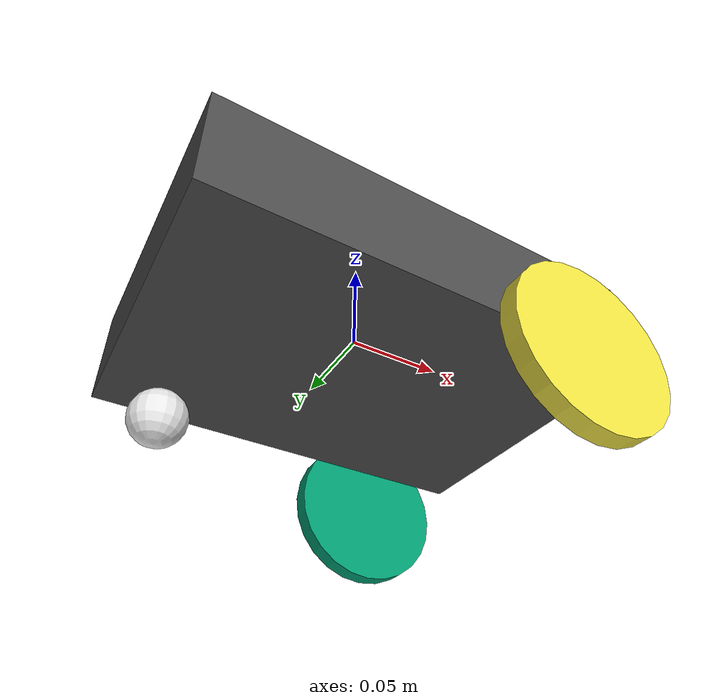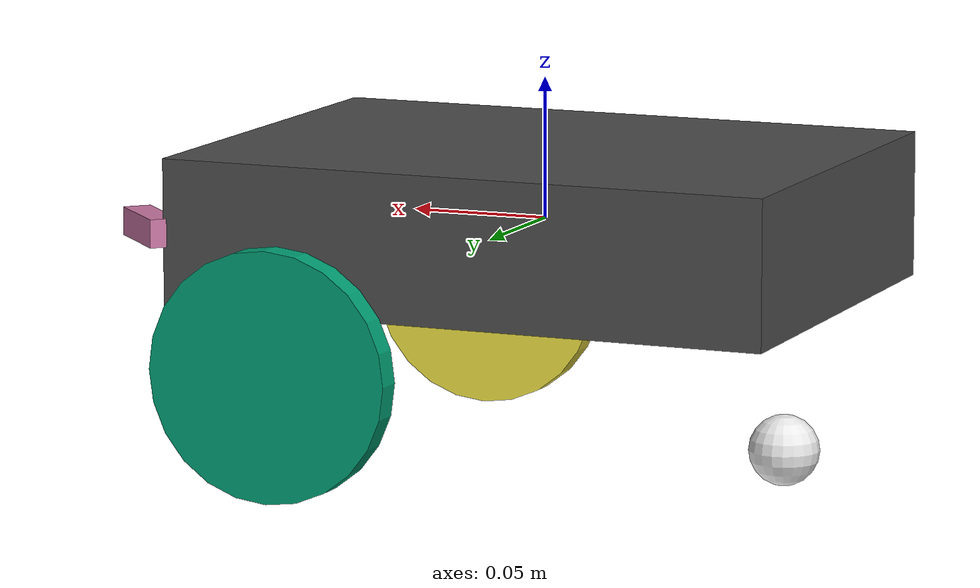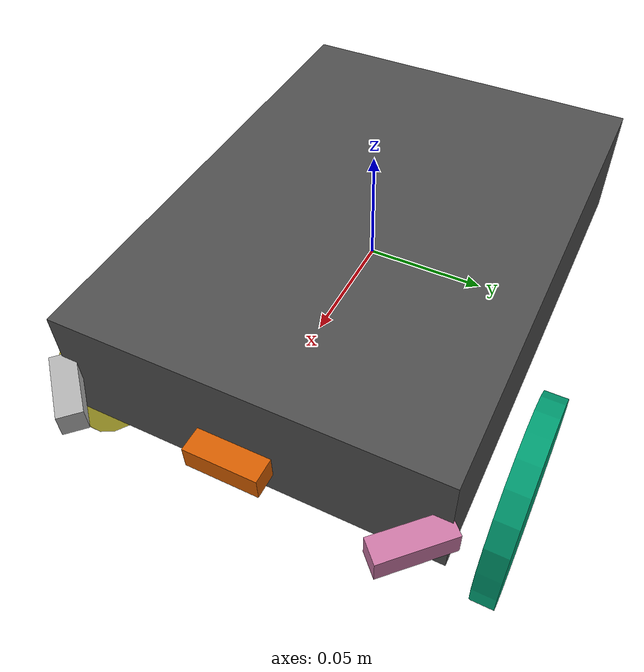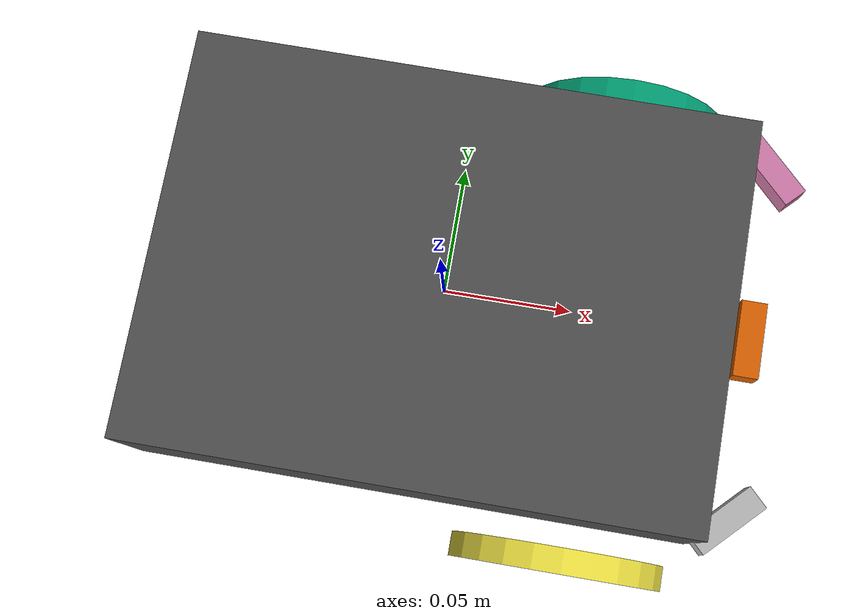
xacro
<?xml version="1.0"?>

<robot name="robot" xmlns:xacro="http://ros.org/wiki/xacro">

   <!-- Include all component files -->
   <xacro:include filename="$(find mybot_description)/urdf/materials.urdf.xacro" />
   <xacro:include filename="$(find mybot_description)/urdf/base.urdf.xacro" />
   <xacro:include filename="$(find mybot_description)/urdf/sensors.urdf.xacro" />

   <!-- Add the base and wheels -->
   <base name="base" color="DarkGrey"/>

   <!-- Add the drive wheels -->
   <xacro:wheel wheel_prefix="left" parent="base_chassis_link" rotation="${-PI/2}">
      <origin xyz="${wheel_offset_x} ${wheel_offset_y} ${wheel_offset_z}" rpy="0 0 0" />
   </xacro:wheel>

   <xacro:wheel wheel_prefix="right" parent="base_chassis_link" rotation="${PI/2}">
      <origin xyz="${wheel_offset_x} ${-wheel_offset_y} ${wheel_offset_z}" rpy="0 0 0" />
   </xacro:wheel>

   <!-- Add a rear caster -->
   <xacro:caster parent="base" prefix="center" color="White"/>

   <!-- Add the sensors -->
   <sensors/>

   <gazebo>
      <plugin name="gazebo_ros_control" filename="libgazebo_ros_control.so">
         <robotNamespace>/</robotNamespace>
       </plugin>

	  <plugin filename="libgazebo_ros_p3d.so" name="gazebo_ros_p3d">
	    <bodyName>base_link</bodyName>
	    <topicName>ground_truth_odom</topicName>
	    <alwaysOn>true</alwaysOn>
	    <updateRate>100.0</updateRate>
	  </plugin>

	<plugin name="differential_drive_controller" filename="libgazebo_ros_diff_drive.so">
	    <legacyMode>false</legacyMode>
	    <alwaysOn>true</alwaysOn>
	    <updateRate>100</updateRate>
   	    <leftJoint>left_wheel_joint</leftJoint>
	    <rightJoint>right_wheel_joint</rightJoint>
	    <wheelSeparation>0.19</wheelSeparation>
	    <wheelDiameter>0.088</wheelDiameter>
	    <wheelAcceleration>0.0</wheelAcceleration>
	    <wheelTorque>1.0</wheelTorque>
	    <commandTopic>cmd_vel</commandTopic>
	    <odometryTopic>odom</odometryTopic>
	    <odometryFrame>odom</odometryFrame>
	    <robotBaseFrame>base_link</robotBaseFrame>
	    <publishOdomTF>true</publishOdomTF>
	    <wheelAcceleration>0</wheelAcceleration>
	    <wheelTorque>100</wheelTorque>
	    <publishTf>1</publishTf>
	    <publishWheelTF>false</publishWheelTF>
	    <publishWheelJointState>true</publishWheelJointState>
	    <odometrySource>encoder</odometrySource>
	  </plugin>
    </gazebo>

</robot>

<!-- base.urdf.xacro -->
<robot name="base" xmlns:xacro="http://ros.org/wiki/xacro">

  <!-- Define a number of dimensions using properties -->
  <xacro:property name="base_size_x" value="0.22" />
  <xacro:property name="base_size_y" value="0.16" />
  <xacro:property name="base_size_z" value="0.052" />

  <xacro:property name="wheel_length" value="0.01" />
  <xacro:property name="wheel_radius" value="0.044" />
  <xacro:property name="wheel_offset_x" value="0.062" />
  <xacro:property name="wheel_offset_y" value="0.095" />
  <xacro:property name="wheel_offset_z" value="-0.044" />

  <xacro:property name="caster_radius" value="0.0125" />
  <xacro:property name="caster_offset_x" value="-0.09" />
  <xacro:property name="caster_offset_y" value="0.0" />
  <xacro:property name="caster_offset_z" value="-0.076" />

  <xacro:property name="PI" value="3.1415" />

  <xacro:macro name="box_inertia" params="m x y z">
      <inertia  ixx="${m*(y*y+z*z)/12}" ixy = "0" ixz = "0"
      iyy="${m*(x*x+z*z)/12}" iyz = "0"
      izz="${m*(x*x+z*z)/12}" />
  </xacro:macro>

  <!-- The base xacro macro -->
  <xacro:macro name="base" params="name color">
     <!-- Base link is the center of the robot's chassis between the motors projected on the ground -->
     <link name="base_link"/>

     <joint name="base_chassis_joint" type="fixed">
         <origin xyz="0 0 0" rpy="0 0 0" />
         <parent link="base_link" />
         <child link="base_chassis_link" />
     </joint>

     <gazebo reference="base_chassis_link">
        <material>Gazebo/Black</material>
     </gazebo>

     <link name="base_chassis_link">
		<inertial>
			<mass value="1.0" />
			<origin xyz="0 0 0" />
			<xacro:box_inertia m="1.0" x="0" y="0" z="0"/>
	    </inertial>

        <visual>
           <origin xyz="0 0 0" rpy="0 0 0" />
           <geometry>
              <box size="${base_size_x} ${base_size_y} ${base_size_z}" />
           </geometry>
           <material name="${color}" />
         </visual>

         <collision>
            <origin xyz="0 0 0" rpy="0 0 0" />
            <geometry>
               <box size="${base_size_x} ${wheel_offset_y*2 + wheel_length} ${base_size_z}" />
            </geometry>
         </collision>
     </link>

  </xacro:macro>

  <!-- define a wheel -->
  <xacro:macro name="wheel" params="wheel_prefix parent rotation *origin">
		<joint name="${wheel_prefix}_wheel_joint" type="continuous">
			<parent link="${parent}"/>
			<child link="${wheel_prefix}_wheel_link"/>
			<xacro:insert_block name="origin"/>
			<axis xyz="0 1 0" rpy="0 0 0" />
		</joint>

		<link name="${wheel_prefix}_wheel_link">
			<inertial>
				<mass value="0.1" />
				<origin xyz="0 0 0" rpy="0 0 0"/>
				<inertia  ixx="0.00303625" ixy="0.000000" ixz="0.000000"
                          iyx="0.000000" iyy="0.00303625" iyz="0.000000"
                          izx="0.000000" izy="0.000000" izz="0.00578884" />
			</inertial>

			<visual>
			    <origin xyz="0 0 0" rpy="${rotation} 0 0"/>
				<geometry>
					<cylinder length="${wheel_length}" radius="${wheel_radius}"/>
				</geometry>
			</visual>

			<collision>
			    <origin xyz="0 0 0" rpy="${rotation} 0 0"/>
				<geometry>
					<cylinder length="${wheel_length}" radius="${wheel_radius}"/>
				</geometry>
			</collision>
		</link>

  </xacro:macro>

  <!-- define a caster -->
  <xacro:macro name="caster" params="prefix parent color">
    <gazebo reference="${prefix}_caster_link" />

    <link name="${prefix}_caster_link">
       <inertial>
          <mass value="0.05" />
          <origin xyz="0 0 0" rpy="0 0 0"/>
          <inertia  ixx="0.01" ixy="0.000000" ixz="0.000000"
                    iyx="0.000000" iyy="0.1" iyz="0.000000"
                    izx="0.000000" izy="0.000000" izz="0.1" />
      </inertial>

      <visual>
        <origin xyz="0 0 0" rpy="0 0 0" />
        <geometry>
          <sphere radius="${caster_radius}" />
        </geometry>
        <material name="${color}" />
      </visual>

      <collision>
        <origin xyz="0 0 0" rpy="0 0 0" />
        <geometry>
          <sphere radius="${caster_radius}" />
        </geometry>
        <material name="${color}" />
        <surface>
           <friction>
              <ode>
                 <mu>0</mu>
                 <mu2>0</mu2>
                 <slip1>1.0</slip1>
                 <slip2>1.0</slip2>
             </ode>
           </friction>
         </surface>
      </collision>
    </link>

    <joint name="${parent}_${prefix}_caster_joint" type="fixed">
      <axis xyz="0 0 1" />
      <origin xyz="${caster_offset_x} ${caster_offset_y} ${caster_offset_z}" rpy="0 0 0" />
      <parent link="${parent}_link"/>
      <child link="${prefix}_caster_link"/>
    </joint>

  </xacro:macro>

</robot>

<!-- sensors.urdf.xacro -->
<robot name="sensors" xmlns:xacro="http://ros.org/wiki/xacro">

  <xacro:macro name="sensors">

   <link name="sonar_front_center">
      <visual>
        <origin xyz="0 0 0" rpy="0 0 0" />
        <geometry>
          <box size="0.01 0.03 0.01" />
        </geometry>
      </visual>

      <collision>
        <origin xyz="0 0 0" rpy="0 0 0" />
        <geometry>
          <box size="0.01 0.03 0.01" />
        </geometry>
      </collision>
   </link>

   <joint name="sonar_front_center" type="fixed">
      <origin xyz="${base_size_x/2 + 0.01} 0 0" rpy="0 0 0" />
      <parent link="base_link"/>
      <child link="sonar_front_center"/>
    </joint>

   <link name="sonar_front_left">
      <visual>
        <origin xyz="0 0 0" rpy="0 0 0" />
        <geometry>
          <box size="0.01 0.03 0.01" />
        </geometry>
      </visual>

      <collision>
        <origin xyz="0 0 0" rpy="0 0 0" />
        <geometry>
          <box size="0.01 0.03 0.01" />
        </geometry>
      </collision>
   </link>

   <joint name="sonar_front_left" type="fixed">
      <origin xyz="${base_size_x/2 + 0.01} ${base_size_y/2 - 0.01} 0" rpy="0 0 ${PI/4}" />
      <parent link="base_link"/>
      <child link="sonar_front_left"/>
    </joint>

   <link name="sonar_front_right">
      <visual>
        <origin xyz="0 0 0" rpy="0 0 0" />
        <geometry>
          <box size="0.01 0.03 0.01" />
        </geometry>
      </visual>

      <collision>
        <origin xyz="0 0 0" rpy="0 0 0" />
        <geometry>
          <box size="0.01 0.03 0.01" />
        </geometry>
      </collision>
   </link>

   <joint name="sonar_front_right" type="fixed">
      <origin xyz="${base_size_x/2 + 0.01} ${-base_size_y/2 + 0.01} 0" rpy="0 0 ${-PI/4}" />
      <parent link="base_link"/>
      <child link="sonar_front_right"/>
    </joint>

   <gazebo reference="sonar_front_center">
	    <sensor type="ray" name="sonar_front_center_sensor">
	      <pose>0 0 0 0 0 0</pose>
	      <update_rate>5</update_rate>
	      <ray>
	         <scan>
	            <horizontal>
	               <samples>1</samples>
	               <resolution>1.0</resolution>
	               <min_angle>-0.01</min_angle>
	               <max_angle>0.01</max_angle>
	            </horizontal>
	            <vertical>
	               <samples>1</samples>
	               <resolution>1</resolution>
	               <min_angle>-0.01</min_angle>
	               <max_angle>0.01</max_angle>
	            </vertical>
	         </scan>
	         <range>
	            <min>0.01</min>
	            <max>3.75</max>
	            <resolution>0.2</resolution>
	         </range>
	      </ray>

	      <plugin filename="libgazebo_ros_range.so" name="sonar_front_center_plugin">
	         <gaussianNoise>0.1</gaussianNoise>
	         <alwaysOn>true</alwaysOn>
	         <updateRate>5</updateRate>
	         <topicName>/arduino/sensor/sonar_front_center</topicName>
	         <frameName>sonar_front_center</frameName>
	         <visualize>true</visualize>
	         <radiation>sonar</radiation>
	         <fov>0.2</fov>
	      </plugin>
	   </sensor>
   </gazebo>

   <gazebo reference="sonar_front_left">
	    <sensor type="ray" name="sonar_front_left_sensor">
	      <pose>0 0 0 0 0 0</pose>
	      <update_rate>5</update_rate>
	      <ray>
	         <scan>
	            <horizontal>
	               <samples>1</samples>
	               <resolution>1.0</resolution>
	               <min_angle>-0.01</min_angle>
	               <max_angle>0.01</max_angle>
	            </horizontal>
	            <vertical>
	               <samples>1</samples>
	               <resolution>1</resolution>
	               <min_angle>-0.01</min_angle>
	               <max_angle>0.01</max_angle>
	            </vertical>
	         </scan>
	         <range>
	            <min>0.01</min>
	            <max>3.75</max>
	            <resolution>0.2</resolution>
	         </range>
	      </ray>

	      <plugin filename="libgazebo_ros_range.so" name="sonar_front_left_plugin">
	         <gaussianNoise>0.1</gaussianNoise>
	         <alwaysOn>true</alwaysOn>
	         <updateRate>5</updateRate>
	         <topicName>/arduino/sensor/sonar_front_left</topicName>
	         <frameName>sonar_front_left</frameName>
	         <visualize>true</visualize>
	         <radiation>sonar</radiation>
	         <fov>0.2</fov>
	      </plugin>
	   </sensor>
   </gazebo>

   <gazebo reference="sonar_front_right">
	    <sensor type="ray" name="sonar_front_right_sensor">
	      <pose>0 0 0 0 0 0</pose>
	      <update_rate>5</update_rate>
	      <ray>
	         <scan>
	            <horizontal>
	               <samples>1</samples>
	               <resolution>1.0</resolution>
	               <min_angle>-0.01</min_angle>
	               <max_angle>0.01</max_angle>
	            </horizontal>
	            <vertical>
	               <samples>1</samples>
	               <resolution>1</resolution>
	               <min_angle>-0.01</min_angle>
	               <max_angle>0.01</max_angle>
	            </vertical>
	         </scan>
	         <range>
	            <min>0.01</min>
	            <max>3.75</max>
	            <resolution>0.2</resolution>
	         </range>
	      </ray>

	      <plugin filename="libgazebo_ros_range.so" name="sonar_front_right_plugin">
	         <gaussianNoise>0.1</gaussianNoise>
	         <alwaysOn>true</alwaysOn>
	         <updateRate>5</updateRate>
	         <topicName>/arduino/sensor/sonar_front_right</topicName>
	         <frameName>sonar_front_right</frameName>
	         <visualize>true</visualize>
	         <radiation>sonar</radiation>
	         <fov>0.2</fov>
	      </plugin>
	   </sensor>
   </gazebo>

  </xacro:macro>

</robot>
